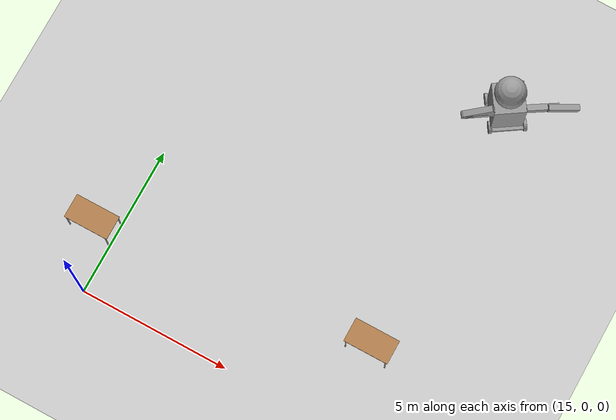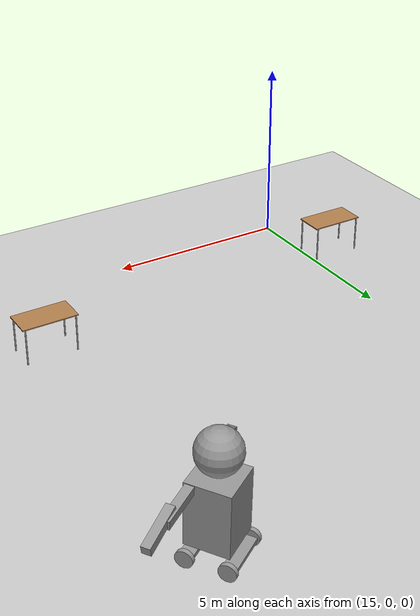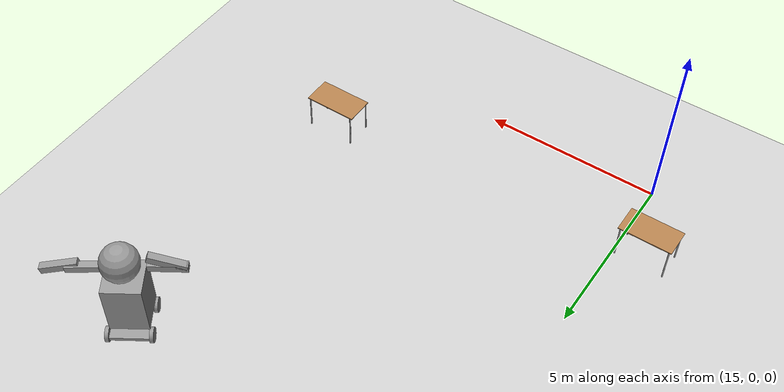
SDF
<sdf version="1.7">
 <world name="default">
  <model name="ground_plane">
   <static>1</static>
   <link name="link">
    <collision name="collision">
     <geometry><plane><normal>0 0 1</normal><size>100 100</size></plane></geometry>
     <surface>
      <contact><collide_bitmask>65535</collide_bitmask></contact>
      <friction><ode><mu>100</mu><mu2>50</mu2></ode></friction>
     </surface>
    </collision>
    <visual name="visual">
     <cast_shadows>0</cast_shadows>
     <geometry><plane><normal>0 0 1</normal><size>100 100</size></plane></geometry>
     <material>
      <script><uri>file://media/materials/scripts/gazebo.material</uri><name>Gazebo/Grey</name></script>
     </material>
    </visual>
   </link>
  </model>
  <model name="humanoid_robot_1">
   <link name="link_1">
    <inertial>
     <mass>2.10479</mass>
     <inertia>
      <ixx>0.952439</ixx>
      <ixy>0</ixy>
      <ixz>0</ixz>
      <iyy>0.952439</iyy>
      <iyz>0</iyz>
      <izz>0.350798</izz>
     </inertia>
    </inertial>
    <pose>-0.448722 -0.08924 -0.419518 0 -0 0</pose>
    <visual name="visual">
     <pose>0 0 0.2 0 -0 0</pose>
     <geometry><box><size>1 1 1.5</size></box></geometry>
     <material>
      <lighting>1</lighting>
      <script><uri>file://media/materials/scripts/gazebo.material</uri><name>Gazebo/Grey</name></script>
      <shader type="pixel"><normal_map>__default__</normal_map></shader>
      <ambient>0.3 0.3 0.3 1</ambient>
      <diffuse>0.7 0.7 0.7 1</diffuse>
      <specular>0.01 0.01 0.01 1</specular>
      <emissive>0 0 0 1</emissive>
     </material>
    </visual>
    <collision name="collision">
     <pose>0 0 0.2 0 -0 0</pose>
     <geometry><box><size>1 1 1.5</size></box></geometry>
     <surface>
      <friction>
       <ode><mu>1</mu><mu2>1</mu2><fdir1>0 0 0</fdir1><slip1>0</slip1><slip2>0</slip2></ode>
       <torsional>
        <coefficient>1</coefficient>
        <patch_radius>0</patch_radius>
        <surface_radius>0</surface_radius>
        <use_patch_radius>1</use_patch_radius>
        <ode><slip>0</slip></ode>
       </torsional>
      </friction>
      <bounce><restitution_coefficient>0</restitution_coefficient><threshold>1e+06</threshold></bounce>
      <contact>
       <collide_without_contact>0</collide_without_contact>
       <collide_without_contact_bitmask>1</collide_without_contact_bitmask>
       <collide_bitmask>1</collide_bitmask>
       <ode>
        <soft_cfm>0</soft_cfm>
        <soft_erp>0.2</soft_erp>
        <kp>1e+13</kp>
        <kd>1</kd>
        <max_vel>0.01</max_vel>
        <min_depth>0</min_depth>
       </ode>
       <bullet>
        <split_impulse>1</split_impulse>
        <split_impulse_penetration_threshold>-0.01</split_impulse_penetration_threshold>
        <soft_cfm>0</soft_cfm>
        <soft_erp>0.2</soft_erp>
        <kp>1e+13</kp>
        <kd>1</kd>
       </bullet>
      </contact>
     </surface>
    </collision>
   </link>
   <link name="link_4">
    <inertial>
     <mass>1</mass>
     <inertia><ixx>0.1</ixx><ixy>0</ixy><ixz>0</ixz><iyy>0.1</iyy><iyz>0</iyz><izz>0.1</izz></inertia>
    </inertial>
    <pose>-0.448722 -0.08924 1.08048 0 -0 0</pose>
    <visual name="visual">
     <geometry><sphere><radius>0.5</radius></sphere></geometry>
     <material>
      <lighting>1</lighting>
      <script><uri>file://media/materials/scripts/gazebo.material</uri><name>Gazebo/Grey</name></script>
      <shader type="pixel"><normal_map>__default__</normal_map></shader>
      <ambient>0.3 0.3 0.3 1</ambient>
      <diffuse>0.7 0.7 0.7 1</diffuse>
      <specular>0.01 0.01 0.01 1</specular>
      <emissive>0 0 0 1</emissive>
     </material>
    </visual>
    <collision name="collision">
     <geometry><sphere><radius>0.5</radius></sphere></geometry>
     <surface>
      <friction>
       <ode><mu>1</mu><mu2>1</mu2><fdir1>0 0 0</fdir1><slip1>0</slip1><slip2>0</slip2></ode>
       <torsional>
        <coefficient>1</coefficient>
        <patch_radius>0</patch_radius>
        <surface_radius>0</surface_radius>
        <use_patch_radius>1</use_patch_radius>
        <ode><slip>0</slip></ode>
       </torsional>
      </friction>
      <bounce><restitution_coefficient>0</restitution_coefficient><threshold>1e+06</threshold></bounce>
      <contact>
       <collide_without_contact>0</collide_without_contact>
       <collide_without_contact_bitmask>1</collide_without_contact_bitmask>
       <collide_bitmask>1</collide_bitmask>
       <ode>
        <soft_cfm>0</soft_cfm>
        <soft_erp>0.2</soft_erp>
        <kp>1e+13</kp>
        <kd>1</kd>
        <max_vel>0.01</max_vel>
        <min_depth>0</min_depth>
       </ode>
       <bullet>
        <split_impulse>1</split_impulse>
        <split_impulse_penetration_threshold>-0.01</split_impulse_penetration_threshold>
        <soft_cfm>0</soft_cfm>
        <soft_erp>0.2</soft_erp>
        <kp>1e+13</kp>
        <kd>1</kd>
       </bullet>
      </contact>
     </surface>
    </collision>
   </link>
   <link name="link_5">
    <inertial>
     <mass>1</mass>
     <inertia>
      <ixx>0.166667</ixx>
      <ixy>0</ixy>
      <ixz>0</ixz>
      <iyy>0.166667</iyy>
      <iyz>0</iyz>
      <izz>0.166667</izz>
     </inertia>
    </inertial>
    <pose>-0.088722 0.91076 0.390482 -0.06 -0.04 0</pose>
    <visual name="visual">
     <geometry><box><size>0.2 1 0.2</size></box></geometry>
     <material>
      <lighting>1</lighting>
      <script><uri>file://media/materials/scripts/gazebo.material</uri><name>Gazebo/Grey</name></script>
      <shader type="pixel"><normal_map>__default__</normal_map></shader>
      <ambient>0.3 0.3 0.3 1</ambient>
      <diffuse>0.7 0.7 0.7 1</diffuse>
      <specular>0.01 0.01 0.01 1</specular>
      <emissive>0 0 0 1</emissive>
     </material>
    </visual>
    <collision name="collision">
     <geometry><box><size>0.2 1 0.2</size></box></geometry>
     <surface>
      <friction>
       <ode><mu>1</mu><mu2>1</mu2><fdir1>0 0 0</fdir1><slip1>0</slip1><slip2>0</slip2></ode>
       <torsional>
        <coefficient>1</coefficient>
        <patch_radius>0</patch_radius>
        <surface_radius>0</surface_radius>
        <use_patch_radius>1</use_patch_radius>
        <ode><slip>0</slip></ode>
       </torsional>
      </friction>
      <bounce><restitution_coefficient>0</restitution_coefficient><threshold>1e+06</threshold></bounce>
      <contact>
       <collide_without_contact>0</collide_without_contact>
       <collide_without_contact_bitmask>1</collide_without_contact_bitmask>
       <collide_bitmask>1</collide_bitmask>
       <ode>
        <soft_cfm>0</soft_cfm>
        <soft_erp>0.2</soft_erp>
        <kp>1e+13</kp>
        <kd>1</kd>
        <max_vel>0.01</max_vel>
        <min_depth>0</min_depth>
       </ode>
       <bullet>
        <split_impulse>1</split_impulse>
        <split_impulse_penetration_threshold>-0.01</split_impulse_penetration_threshold>
        <soft_cfm>0</soft_cfm>
        <soft_erp>0.2</soft_erp>
        <kp>1e+13</kp>
        <kd>1</kd>
       </bullet>
      </contact>
     </surface>
    </collision>
   </link>
   <link name="link_5_clone">
    <inertial>
     <mass>1</mass>
     <inertia>
      <ixx>0.166667</ixx>
      <ixy>0</ixy>
      <ixz>0</ixz>
      <iyy>0.166667</iyy>
      <iyz>0</iyz>
      <izz>0.166667</izz>
     </inertia>
    </inertial>
    <pose>-0.048722 -1.08924 0.430482 0 -0 0</pose>
    <visual name="visual">
     <geometry><box><size>0.2 1 0.2</size></box></geometry>
     <material>
      <lighting>1</lighting>
      <script><uri>file://media/materials/scripts/gazebo.material</uri><name>Gazebo/Grey</name></script>
      <shader type="pixel"><normal_map>__default__</normal_map></shader>
      <ambient>0.3 0.3 0.3 1</ambient>
      <diffuse>0.7 0.7 0.7 1</diffuse>
      <specular>0.01 0.01 0.01 1</specular>
      <emissive>0 0 0 1</emissive>
     </material>
    </visual>
    <collision name="collision">
     <geometry><box><size>0.2 1 0.2</size></box></geometry>
     <surface>
      <friction>
       <ode><mu>1</mu><mu2>1</mu2><fdir1>0 0 0</fdir1><slip1>0</slip1><slip2>0</slip2></ode>
       <torsional>
        <coefficient>1</coefficient>
        <patch_radius>0</patch_radius>
        <surface_radius>0</surface_radius>
        <use_patch_radius>1</use_patch_radius>
        <ode><slip>0</slip></ode>
       </torsional>
      </friction>
      <bounce><restitution_coefficient>0</restitution_coefficient><threshold>1e+06</threshold></bounce>
      <contact>
       <collide_without_contact>0</collide_without_contact>
       <collide_without_contact_bitmask>1</collide_without_contact_bitmask>
       <collide_bitmask>1</collide_bitmask>
       <ode>
        <soft_cfm>0</soft_cfm>
        <soft_erp>0.2</soft_erp>
        <kp>1e+13</kp>
        <kd>1</kd>
        <max_vel>0.01</max_vel>
        <min_depth>0</min_depth>
       </ode>
       <bullet>
        <split_impulse>1</split_impulse>
        <split_impulse_penetration_threshold>-0.01</split_impulse_penetration_threshold>
        <soft_cfm>0</soft_cfm>
        <soft_erp>0.2</soft_erp>
        <kp>1e+13</kp>
        <kd>1</kd>
       </bullet>
      </contact>
     </surface>
    </collision>
   </link>
   <link name="link_5_clone_clone">
    <inertial>
     <mass>1</mass>
     <inertia>
      <ixx>0.166667</ixx>
      <ixy>0</ixy>
      <ixz>0</ixz>
      <iyy>0.166667</iyy>
      <iyz>0</iyz>
      <izz>0.166667</izz>
     </inertia>
    </inertial>
    <pose>-0.048722 -1.08689 0.604392 0.369688 -0 0</pose>
    <visual name="visual">
     <geometry><box><size>0.2 1 0.2</size></box></geometry>
     <material>
      <lighting>1</lighting>
      <script><uri>file://media/materials/scripts/gazebo.material</uri><name>Gazebo/Grey</name></script>
      <shader type="pixel"><normal_map>__default__</normal_map></shader>
      <ambient>0.3 0.3 0.3 1</ambient>
      <diffuse>0.7 0.7 0.7 1</diffuse>
      <specular>0.01 0.01 0.01 1</specular>
      <emissive>0 0 0 1</emissive>
     </material>
    </visual>
    <collision name="collision">
     <geometry><box><size>0.2 1 0.2</size></box></geometry>
     <surface>
      <friction>
       <ode><mu>1</mu><mu2>1</mu2><fdir1>0 0 0</fdir1><slip1>0</slip1><slip2>0</slip2></ode>
       <torsional>
        <coefficient>1</coefficient>
        <patch_radius>0</patch_radius>
        <surface_radius>0</surface_radius>
        <use_patch_radius>1</use_patch_radius>
        <ode><slip>0</slip></ode>
       </torsional>
      </friction>
      <bounce><restitution_coefficient>0</restitution_coefficient><threshold>1e+06</threshold></bounce>
      <contact>
       <collide_without_contact>0</collide_without_contact>
       <collide_without_contact_bitmask>1</collide_without_contact_bitmask>
       <collide_bitmask>1</collide_bitmask>
       <ode>
        <soft_cfm>0</soft_cfm>
        <soft_erp>0.2</soft_erp>
        <kp>1e+13</kp>
        <kd>1</kd>
        <max_vel>0.01</max_vel>
        <min_depth>0</min_depth>
       </ode>
       <bullet>
        <split_impulse>1</split_impulse>
        <split_impulse_penetration_threshold>-0.01</split_impulse_penetration_threshold>
        <soft_cfm>0</soft_cfm>
        <soft_erp>0.2</soft_erp>
        <kp>1e+13</kp>
        <kd>1</kd>
       </bullet>
      </contact>
     </surface>
    </collision>
   </link>
   <link name="link_5_clone_clone_0">
    <inertial>
     <mass>1</mass>
     <inertia>
      <ixx>0.166667</ixx>
      <ixy>0</ixy>
      <ixz>0</ixz>
      <iyy>0.166667</iyy>
      <iyz>0</iyz>
      <izz>0.166667</izz>
     </inertia>
    </inertial>
    <pose>-0.043643 1.55059 0.350025 -0.239275 0 0</pose>
    <visual name="visual">
     <geometry><box><size>0.2 1 0.2</size></box></geometry>
     <material>
      <lighting>1</lighting>
      <script><uri>file://media/materials/scripts/gazebo.material</uri><name>Gazebo/Grey</name></script>
      <shader type="pixel"><normal_map>__default__</normal_map></shader>
      <ambient>0.3 0.3 0.3 1</ambient>
      <diffuse>0.7 0.7 0.7 1</diffuse>
      <specular>0.01 0.01 0.01 1</specular>
      <emissive>0 0 0 1</emissive>
     </material>
    </visual>
    <collision name="collision">
     <geometry><box><size>0.2 1 0.2</size></box></geometry>
     <surface>
      <friction>
       <ode><mu>1</mu><mu2>1</mu2><fdir1>0 0 0</fdir1><slip1>0</slip1><slip2>0</slip2></ode>
       <torsional>
        <coefficient>1</coefficient>
        <patch_radius>0</patch_radius>
        <surface_radius>0</surface_radius>
        <use_patch_radius>1</use_patch_radius>
        <ode><slip>0</slip></ode>
       </torsional>
      </friction>
      <bounce><restitution_coefficient>0</restitution_coefficient><threshold>1e+06</threshold></bounce>
      <contact>
       <collide_without_contact>0</collide_without_contact>
       <collide_without_contact_bitmask>1</collide_without_contact_bitmask>
       <collide_bitmask>1</collide_bitmask>
       <ode>
        <soft_cfm>0</soft_cfm>
        <soft_erp>0.2</soft_erp>
        <kp>1e+13</kp>
        <kd>1</kd>
        <max_vel>0.01</max_vel>
        <min_depth>0</min_depth>
       </ode>
       <bullet>
        <split_impulse>1</split_impulse>
        <split_impulse_penetration_threshold>-0.01</split_impulse_penetration_threshold>
        <soft_cfm>0</soft_cfm>
        <soft_erp>0.2</soft_erp>
        <kp>1e+13</kp>
        <kd>1</kd>
       </bullet>
      </contact>
     </surface>
    </collision>
   </link>
   <model name="robot">
    <link name="link_1">
     <inertial>
      <mass>1</mass>
      <inertia>
       <ixx>0.166667</ixx>
       <ixy>0</ixy>
       <ixz>0</ixz>
       <iyy>0.166667</iyy>
       <iyz>0</iyz>
       <izz>0.166667</izz>
      </inertia>
     </inertial>
     <visual name="visual">
      <geometry><box><size>0.3 1 0.1</size></box></geometry>
      <material>
       <lighting>1</lighting>
       <script><uri>file://media/materials/scripts/gazebo.material</uri><name>Gazebo/Grey</name></script>
       <shader type="pixel"><normal_map>__default__</normal_map></shader>
       <ambient>0.3 0.3 0.3 1</ambient>
       <diffuse>0.7 0.7 0.7 1</diffuse>
       <specular>0.01 0.01 0.01 1</specular>
       <emissive>0 0 0 1</emissive>
      </material>
     </visual>
     <collision name="collision">
      <geometry><box><size>0.3 1 0.1</size></box></geometry>
      <surface>
       <friction>
        <ode><mu>1</mu><mu2>1</mu2><fdir1>0 0 0</fdir1><slip1>0</slip1><slip2>0</slip2></ode>
        <torsional>
         <coefficient>1</coefficient>
         <patch_radius>0</patch_radius>
         <surface_radius>0</surface_radius>
         <use_patch_radius>1</use_patch_radius>
         <ode><slip>0</slip></ode>
        </torsional>
       </friction>
       <bounce><restitution_coefficient>0</restitution_coefficient><threshold>1e+06</threshold></bounce>
       <contact>
        <collide_without_contact>0</collide_without_contact>
        <collide_without_contact_bitmask>1</collide_without_contact_bitmask>
        <collide_bitmask>1</collide_bitmask>
        <ode>
         <soft_cfm>0</soft_cfm>
         <soft_erp>0.2</soft_erp>
         <kp>1e+13</kp>
         <kd>1</kd>
         <max_vel>0.01</max_vel>
         <min_depth>0</min_depth>
        </ode>
        <bullet>
         <split_impulse>1</split_impulse>
         <split_impulse_penetration_threshold>-0.01</split_impulse_penetration_threshold>
         <soft_cfm>0</soft_cfm>
         <soft_erp>0.2</soft_erp>
         <kp>1e+13</kp>
         <kd>1</kd>
        </bullet>
       </contact>
      </surface>
     </collision>
    </link>
    <link name="link_3_clone">
     <inertial>
      <mass>1</mass>
      <inertia><ixx>0.145833</ixx><ixy>0</ixy><ixz>0</ixz><iyy>0.145833</iyy><iyz>0</iyz><izz>0.125</izz></inertia>
     </inertial>
     <pose>0 -0.550019 0 1.5707 -0 0</pose>
     <visual name="visual">
      <geometry><cylinder><radius>0.2</radius><length>0.1</length></cylinder></geometry>
      <material>
       <lighting>1</lighting>
       <script><uri>file://media/materials/scripts/gazebo.material</uri><name>Gazebo/Grey</name></script>
       <shader type="pixel"><normal_map>__default__</normal_map></shader>
       <ambient>0.3 0.3 0.3 1</ambient>
       <diffuse>0.7 0.7 0.7 1</diffuse>
       <specular>0.01 0.01 0.01 1</specular>
       <emissive>0 0 0 1</emissive>
      </material>
     </visual>
     <collision name="collision">
      <geometry><cylinder><radius>0.2</radius><length>0.1</length></cylinder></geometry>
      <surface>
       <friction>
        <ode><mu>1</mu><mu2>1</mu2><fdir1>0 0 0</fdir1><slip1>0</slip1><slip2>0</slip2></ode>
        <torsional>
         <coefficient>1</coefficient>
         <patch_radius>0</patch_radius>
         <surface_radius>0</surface_radius>
         <use_patch_radius>1</use_patch_radius>
         <ode><slip>0</slip></ode>
        </torsional>
       </friction>
       <bounce><restitution_coefficient>0</restitution_coefficient><threshold>1e+06</threshold></bounce>
       <contact>
        <collide_without_contact>0</collide_without_contact>
        <collide_without_contact_bitmask>1</collide_without_contact_bitmask>
        <collide_bitmask>1</collide_bitmask>
        <ode>
         <soft_cfm>0</soft_cfm>
         <soft_erp>0.2</soft_erp>
         <kp>1e+13</kp>
         <kd>1</kd>
         <max_vel>0.01</max_vel>
         <min_depth>0</min_depth>
        </ode>
        <bullet>
         <split_impulse>1</split_impulse>
         <split_impulse_penetration_threshold>-0.01</split_impulse_penetration_threshold>
         <soft_cfm>0</soft_cfm>
         <soft_erp>0.2</soft_erp>
         <kp>1e+13</kp>
         <kd>1</kd>
        </bullet>
       </contact>
      </surface>
     </collision>
    </link>
    <link name="link_3_clone_clone">
     <inertial>
      <mass>1</mass>
      <inertia><ixx>0.145833</ixx><ixy>0</ixy><ixz>0</ixz><iyy>0.145833</iyy><iyz>0</iyz><izz>0.125</izz></inertia>
     </inertial>
     <pose>0 0.550019 0 1.5707 -0 0</pose>
     <visual name="visual">
      <geometry><cylinder><radius>0.2</radius><length>0.1</length></cylinder></geometry>
      <material>
       <lighting>1</lighting>
       <script><uri>file://media/materials/scripts/gazebo.material</uri><name>Gazebo/Grey</name></script>
       <shader type="pixel"><normal_map>__default__</normal_map></shader>
       <ambient>0.3 0.3 0.3 1</ambient>
       <diffuse>0.7 0.7 0.7 1</diffuse>
       <specular>0.01 0.01 0.01 1</specular>
       <emissive>0 0 0 1</emissive>
      </material>
     </visual>
     <collision name="collision">
      <geometry><cylinder><radius>0.2</radius><length>0.1</length></cylinder></geometry>
      <surface>
       <friction>
        <ode><mu>1</mu><mu2>1</mu2><fdir1>0 0 0</fdir1><slip1>0</slip1><slip2>0</slip2></ode>
        <torsional>
         <coefficient>1</coefficient>
         <patch_radius>0</patch_radius>
         <surface_radius>0</surface_radius>
         <use_patch_radius>1</use_patch_radius>
         <ode><slip>0</slip></ode>
        </torsional>
       </friction>
       <bounce><restitution_coefficient>0</restitution_coefficient><threshold>1e+06</threshold></bounce>
       <contact>
        <collide_without_contact>0</collide_without_contact>
        <collide_without_contact_bitmask>1</collide_without_contact_bitmask>
        <collide_bitmask>1</collide_bitmask>
        <ode>
         <soft_cfm>0</soft_cfm>
         <soft_erp>0.2</soft_erp>
         <kp>1e+13</kp>
         <kd>1</kd>
         <max_vel>0.01</max_vel>
         <min_depth>0</min_depth>
        </ode>
        <bullet>
         <split_impulse>1</split_impulse>
         <split_impulse_penetration_threshold>-0.01</split_impulse_penetration_threshold>
         <soft_cfm>0</soft_cfm>
         <soft_erp>0.2</soft_erp>
         <kp>1e+13</kp>
         <kd>1</kd>
        </bullet>
       </contact>
      </surface>
     </collision>
    </link>
    <joint name="link_1_JOINT_1" type="revolute">
     <parent>link_1</parent>
     <child>link_3_clone</child>
     <axis>
      <xyz>0 0 1</xyz>
      <limit>
       <lower>-1.79769e+308</lower>
       <upper>1.79769e+308</upper>
       <effort>-1</effort>
       <velocity>-1</velocity>
      </limit>
      <dynamics>
       <spring_reference>0</spring_reference>
       <spring_stiffness>0</spring_stiffness>
       <damping>0</damping>
      </dynamics>
     </axis>
     <physics>
      <ode><limit><cfm>0</cfm><erp>0.2</erp></limit><suspension><cfm>0</cfm><erp>0.2</erp></suspension></ode>
     </physics>
    </joint>
    <joint name="link_1_JOINT_3" type="revolute">
     <parent>link_1</parent>
     <child>link_3_clone_clone</child>
     <axis>
      <xyz>0 0 1</xyz>
      <limit>
       <lower>-1.79769e+308</lower>
       <upper>1.79769e+308</upper>
       <effort>-1</effort>
       <velocity>-1</velocity>
      </limit>
      <dynamics>
       <spring_reference>0</spring_reference>
       <spring_stiffness>0</spring_stiffness>
       <damping>0</damping>
      </dynamics>
     </axis>
     <physics>
      <ode><limit><cfm>0</cfm><erp>0.2</erp></limit><suspension><cfm>0</cfm><erp>0.2</erp></suspension></ode>
     </physics>
    </joint>
    <static>0</static>
    <pose>-0.041176 -0.042224 -1.22566 0 -0 0</pose>
   </model>
   <model name="robot_0">
    <link name="link_1">
     <inertial>
      <mass>1</mass>
      <inertia>
       <ixx>0.166667</ixx>
       <ixy>0</ixy>
       <ixz>0</ixz>
       <iyy>0.166667</iyy>
       <iyz>0</iyz>
       <izz>0.166667</izz>
      </inertia>
     </inertial>
     <visual name="visual">
      <geometry><box><size>0.3 1 0.1</size></box></geometry>
      <material>
       <lighting>1</lighting>
       <script><uri>file://media/materials/scripts/gazebo.material</uri><name>Gazebo/Grey</name></script>
       <shader type="pixel"><normal_map>__default__</normal_map></shader>
       <ambient>0.3 0.3 0.3 1</ambient>
       <diffuse>0.7 0.7 0.7 1</diffuse>
       <specular>0.01 0.01 0.01 1</specular>
       <emissive>0 0 0 1</emissive>
      </material>
     </visual>
     <collision name="collision">
      <geometry><box><size>0.3 1 0.1</size></box></geometry>
      <surface>
       <friction>
        <ode><mu>1</mu><mu2>1</mu2><fdir1>0 0 0</fdir1><slip1>0</slip1><slip2>0</slip2></ode>
        <torsional>
         <coefficient>1</coefficient>
         <patch_radius>0</patch_radius>
         <surface_radius>0</surface_radius>
         <use_patch_radius>1</use_patch_radius>
         <ode><slip>0</slip></ode>
        </torsional>
       </friction>
       <bounce><restitution_coefficient>0</restitution_coefficient><threshold>1e+06</threshold></bounce>
       <contact>
        <collide_without_contact>0</collide_without_contact>
        <collide_without_contact_bitmask>1</collide_without_contact_bitmask>
        <collide_bitmask>1</collide_bitmask>
        <ode>
         <soft_cfm>0</soft_cfm>
         <soft_erp>0.2</soft_erp>
         <kp>1e+13</kp>
         <kd>1</kd>
         <max_vel>0.01</max_vel>
         <min_depth>0</min_depth>
        </ode>
        <bullet>
         <split_impulse>1</split_impulse>
         <split_impulse_penetration_threshold>-0.01</split_impulse_penetration_threshold>
         <soft_cfm>0</soft_cfm>
         <soft_erp>0.2</soft_erp>
         <kp>1e+13</kp>
         <kd>1</kd>
        </bullet>
       </contact>
      </surface>
     </collision>
    </link>
    <link name="link_3_clone">
     <inertial>
      <mass>1</mass>
      <inertia><ixx>0.145833</ixx><ixy>0</ixy><ixz>0</ixz><iyy>0.145833</iyy><iyz>0</iyz><izz>0.125</izz></inertia>
     </inertial>
     <pose>0 -0.550019 0 1.5707 -0 0</pose>
     <visual name="visual">
      <geometry><cylinder><radius>0.2</radius><length>0.1</length></cylinder></geometry>
      <material>
       <lighting>1</lighting>
       <script><uri>file://media/materials/scripts/gazebo.material</uri><name>Gazebo/Grey</name></script>
       <shader type="pixel"><normal_map>__default__</normal_map></shader>
       <ambient>0.3 0.3 0.3 1</ambient>
       <diffuse>0.7 0.7 0.7 1</diffuse>
       <specular>0.01 0.01 0.01 1</specular>
       <emissive>0 0 0 1</emissive>
      </material>
     </visual>
     <collision name="collision">
      <geometry><cylinder><radius>0.2</radius><length>0.1</length></cylinder></geometry>
      <surface>
       <friction>
        <ode><mu>1</mu><mu2>1</mu2><fdir1>0 0 0</fdir1><slip1>0</slip1><slip2>0</slip2></ode>
        <torsional>
         <coefficient>1</coefficient>
         <patch_radius>0</patch_radius>
         <surface_radius>0</surface_radius>
         <use_patch_radius>1</use_patch_radius>
         <ode><slip>0</slip></ode>
        </torsional>
       </friction>
       <bounce><restitution_coefficient>0</restitution_coefficient><threshold>1e+06</threshold></bounce>
       <contact>
        <collide_without_contact>0</collide_without_contact>
        <collide_without_contact_bitmask>1</collide_without_contact_bitmask>
        <collide_bitmask>1</collide_bitmask>
        <ode>
         <soft_cfm>0</soft_cfm>
         <soft_erp>0.2</soft_erp>
         <kp>1e+13</kp>
         <kd>1</kd>
         <max_vel>0.01</max_vel>
         <min_depth>0</min_depth>
        </ode>
        <bullet>
         <split_impulse>1</split_impulse>
         <split_impulse_penetration_threshold>-0.01</split_impulse_penetration_threshold>
         <soft_cfm>0</soft_cfm>
         <soft_erp>0.2</soft_erp>
         <kp>1e+13</kp>
         <kd>1</kd>
        </bullet>
       </contact>
      </surface>
     </collision>
    </link>
    <link name="link_3_clone_clone">
     <inertial>
      <mass>1</mass>
      <inertia><ixx>0.145833</ixx><ixy>0</ixy><ixz>0</ixz><iyy>0.145833</iyy><iyz>0</iyz><izz>0.125</izz></inertia>
     </inertial>
     <pose>0 0.550019 0 1.5707 -0 0</pose>
     <visual name="visual">
      <geometry><cylinder><radius>0.2</radius><length>0.1</length></cylinder></geometry>
      <material>
       <lighting>1</lighting>
       <script><uri>file://media/materials/scripts/gazebo.material</uri><name>Gazebo/Grey</name></script>
       <shader type="pixel"><normal_map>__default__</normal_map></shader>
       <ambient>0.3 0.3 0.3 1</ambient>
       <diffuse>0.7 0.7 0.7 1</diffuse>
       <specular>0.01 0.01 0.01 1</specular>
       <emissive>0 0 0 1</emissive>
      </material>
     </visual>
     <collision name="collision">
      <geometry><cylinder><radius>0.2</radius><length>0.1</length></cylinder></geometry>
      <surface>
       <friction>
        <ode><mu>1</mu><mu2>1</mu2><fdir1>0 0 0</fdir1><slip1>0</slip1><slip2>0</slip2></ode>
        <torsional>
         <coefficient>1</coefficient>
         <patch_radius>0</patch_radius>
         <surface_radius>0</surface_radius>
         <use_patch_radius>1</use_patch_radius>
         <ode><slip>0</slip></ode>
        </torsional>
       </friction>
       <bounce><restitution_coefficient>0</restitution_coefficient><threshold>1e+06</threshold></bounce>
       <contact>
        <collide_without_contact>0</collide_without_contact>
        <collide_without_contact_bitmask>1</collide_without_contact_bitmask>
        <collide_bitmask>1</collide_bitmask>
        <ode>
         <soft_cfm>0</soft_cfm>
         <soft_erp>0.2</soft_erp>
         <kp>1e+13</kp>
         <kd>1</kd>
         <max_vel>0.01</max_vel>
         <min_depth>0</min_depth>
        </ode>
        <bullet>
         <split_impulse>1</split_impulse>
         <split_impulse_penetration_threshold>-0.01</split_impulse_penetration_threshold>
         <soft_cfm>0</soft_cfm>
         <soft_erp>0.2</soft_erp>
         <kp>1e+13</kp>
         <kd>1</kd>
        </bullet>
       </contact>
      </surface>
     </collision>
    </link>
    <joint name="link_1_JOINT_1" type="revolute">
     <parent>link_1</parent>
     <child>link_3_clone</child>
     <axis>
      <xyz>0 0 1</xyz>
      <limit>
       <lower>-1.79769e+308</lower>
       <upper>1.79769e+308</upper>
       <effort>-1</effort>
       <velocity>-1</velocity>
      </limit>
      <dynamics>
       <spring_reference>0</spring_reference>
       <spring_stiffness>0</spring_stiffness>
       <damping>0</damping>
      </dynamics>
     </axis>
     <physics>
      <ode><limit><cfm>0</cfm><erp>0.2</erp></limit><suspension><cfm>0</cfm><erp>0.2</erp></suspension></ode>
     </physics>
    </joint>
    <joint name="link_1_JOINT_3" type="revolute">
     <parent>link_1</parent>
     <child>link_3_clone_clone</child>
     <axis>
      <xyz>0 0 1</xyz>
      <limit>
       <lower>-1.79769e+308</lower>
       <upper>1.79769e+308</upper>
       <effort>-1</effort>
       <velocity>-1</velocity>
      </limit>
      <dynamics>
       <spring_reference>0</spring_reference>
       <spring_stiffness>0</spring_stiffness>
       <damping>0</damping>
      </dynamics>
     </axis>
     <physics>
      <ode><limit><cfm>0</cfm><erp>0.2</erp></limit><suspension><cfm>0</cfm><erp>0.2</erp></suspension></ode>
     </physics>
    </joint>
    <static>0</static>
    <pose>-0.953654 -0.064519 -1.21068 0 -0 0</pose>
   </model>
   <joint name="link_1_JOINT_0" type="ball">
    <parent>link_1</parent>
    <child>link_4</child>
    <physics>
     <ode><limit><cfm>0</cfm><erp>0.2</erp></limit><suspension><cfm>0</cfm><erp>0.2</erp></suspension></ode>
    </physics>
   </joint>
   <joint name="link_1_JOINT_3" type="ball">
    <parent>link_1</parent>
    <child>link_5</child>
    <physics>
     <ode><limit><cfm>0</cfm><erp>0.2</erp></limit><suspension><cfm>0</cfm><erp>0.2</erp></suspension></ode>
    </physics>
   </joint>
   <joint name="link_1_JOINT_4" type="ball">
    <parent>link_1</parent>
    <child>link_5_clone</child>
    <physics>
     <ode><limit><cfm>0</cfm><erp>0.2</erp></limit><suspension><cfm>0</cfm><erp>0.2</erp></suspension></ode>
    </physics>
   </joint>
   <joint name="link_5_JOINT_10" type="revolute">
    <parent>link_5</parent>
    <child>link_5_clone_clone_0</child>
    <axis>
     <xyz>1 0 0</xyz>
     <limit>
      <lower>-1.79769e+308</lower>
      <upper>1.79769e+308</upper>
      <effort>-1</effort>
      <velocity>-1</velocity>
     </limit>
     <dynamics>
      <spring_reference>0</spring_reference>
      <spring_stiffness>0</spring_stiffness>
      <damping>0</damping>
     </dynamics>
    </axis>
    <physics>
     <ode><limit><cfm>0</cfm><erp>0.2</erp></limit><suspension><cfm>0</cfm><erp>0.2</erp></suspension></ode>
    </physics>
   </joint>
   <joint name="link_5_clone_JOINT_5" type="revolute">
    <parent>link_5_clone</parent>
    <child>link_5_clone_clone</child>
    <pose>0 0 0 -0.01 0 0</pose>
    <axis>
     <xyz>1 0 0</xyz>
     <limit>
      <lower>-1.79769e+308</lower>
      <upper>1.79769e+308</upper>
      <effort>-1</effort>
      <velocity>-1</velocity>
     </limit>
     <dynamics>
      <spring_reference>0</spring_reference>
      <spring_stiffness>0</spring_stiffness>
      <damping>0</damping>
     </dynamics>
    </axis>
    <physics>
     <ode><limit><cfm>0</cfm><erp>0.2</erp></limit><suspension><cfm>0</cfm><erp>0.2</erp></suspension></ode>
    </physics>
   </joint>
   <joint name="link_1_JOINT_1" type="fixed">
    <parent>robot::link_1</parent>
    <child>link_1</child>
    <physics>
     <ode><limit><cfm>0</cfm><erp>0.2</erp></limit><suspension><cfm>0</cfm><erp>0.2</erp></suspension></ode>
    </physics>
   </joint>
   <joint name="link_1_JOINT_2" type="fixed">
    <parent>robot_0::link_1</parent>
    <child>link_1</child>
    <physics>
     <ode><limit><cfm>0</cfm><erp>0.2</erp></limit><suspension><cfm>0</cfm><erp>0.2</erp></suspension></ode>
    </physics>
   </joint>
   <static>0</static>
   <pose>24.0673 10.875 1.42617 4e-06 -0.01641 -0.994315</pose>
   <scale>200 200 200</scale>
  </model>
  <model name="table_0">
   <static>1</static>
   <link name="link">
    <collision name="surface">
     <pose>0 0 1 0 -0 0</pose>
     <geometry><box><size>1.5 0.8 0.03</size></box></geometry>
     <surface><friction><ode><mu>0.6</mu><mu2>0.6</mu2></ode></friction></surface>
    </collision>
    <visual name="visual1">
     <pose>0 0 1 0 -0 0</pose>
     <geometry><box><size>1.5 0.8 0.03</size></box></geometry>
     <material>
      <script><uri>file://media/materials/scripts/gazebo.material</uri><name>Gazebo/Wood</name></script>
     </material>
    </visual>
    <collision name="front_left_leg">
     <pose>0.68 0.38 0.5 0 -0 0</pose>
     <geometry><cylinder><radius>0.02</radius><length>1</length></cylinder></geometry>
    </collision>
    <visual name="front_left_leg">
     <pose>0.68 0.38 0.5 0 -0 0</pose>
     <geometry><cylinder><radius>0.02</radius><length>1</length></cylinder></geometry>
     <material>
      <script><uri>file://media/materials/scripts/gazebo.material</uri><name>Gazebo/Grey</name></script>
     </material>
    </visual>
    <collision name="front_right_leg">
     <pose>0.68 -0.38 0.5 0 -0 0</pose>
     <geometry><cylinder><radius>0.02</radius><length>1</length></cylinder></geometry>
    </collision>
    <visual name="front_right_leg">
     <pose>0.68 -0.38 0.5 0 -0 0</pose>
     <geometry><cylinder><radius>0.02</radius><length>1</length></cylinder></geometry>
     <material>
      <script><uri>file://media/materials/scripts/gazebo.material</uri><name>Gazebo/Grey</name></script>
     </material>
    </visual>
    <collision name="back_right_leg">
     <pose>-0.68 -0.38 0.5 0 -0 0</pose>
     <geometry><cylinder><radius>0.02</radius><length>1</length></cylinder></geometry>
    </collision>
    <visual name="back_right_leg">
     <pose>-0.68 -0.38 0.5 0 -0 0</pose>
     <geometry><cylinder><radius>0.02</radius><length>1</length></cylinder></geometry>
     <material>
      <script><uri>file://media/materials/scripts/gazebo.material</uri><name>Gazebo/Grey</name></script>
     </material>
    </visual>
    <collision name="back_left_leg">
     <pose>-0.68 0.38 0.5 0 -0 0</pose>
     <geometry><cylinder><radius>0.02</radius><length>1</length></cylinder></geometry>
    </collision>
    <visual name="back_left_leg">
     <pose>-0.68 0.38 0.5 0 -0 0</pose>
     <geometry><cylinder><radius>0.02</radius><length>1</length></cylinder></geometry>
     <material>
      <script><uri>file://media/materials/scripts/gazebo.material</uri><name>Gazebo/Grey</name></script>
     </material>
    </visual>
   </link>
   <pose>14.2431 2.02522 0 0 -0 0</pose>
  </model>
  <model name="table_1">
   <static>1</static>
   <link name="link">
    <collision name="surface">
     <pose>0 0 1 0 -0 0</pose>
     <geometry><box><size>1.5 0.8 0.03</size></box></geometry>
     <surface><friction><ode><mu>0.6</mu><mu2>0.6</mu2></ode></friction></surface>
    </collision>
    <visual name="visual1">
     <pose>0 0 1 0 -0 0</pose>
     <geometry><box><size>1.5 0.8 0.03</size></box></geometry>
     <material>
      <script><uri>file://media/materials/scripts/gazebo.material</uri><name>Gazebo/Wood</name></script>
     </material>
    </visual>
    <collision name="front_left_leg">
     <pose>0.68 0.38 0.5 0 -0 0</pose>
     <geometry><cylinder><radius>0.02</radius><length>1</length></cylinder></geometry>
    </collision>
    <visual name="front_left_leg">
     <pose>0.68 0.38 0.5 0 -0 0</pose>
     <geometry><cylinder><radius>0.02</radius><length>1</length></cylinder></geometry>
     <material>
      <script><uri>file://media/materials/scripts/gazebo.material</uri><name>Gazebo/Grey</name></script>
     </material>
    </visual>
    <collision name="front_right_leg">
     <pose>0.68 -0.38 0.5 0 -0 0</pose>
     <geometry><cylinder><radius>0.02</radius><length>1</length></cylinder></geometry>
    </collision>
    <visual name="front_right_leg">
     <pose>0.68 -0.38 0.5 0 -0 0</pose>
     <geometry><cylinder><radius>0.02</radius><length>1</length></cylinder></geometry>
     <material>
      <script><uri>file://media/materials/scripts/gazebo.material</uri><name>Gazebo/Grey</name></script>
     </material>
    </visual>
    <collision name="back_right_leg">
     <pose>-0.68 -0.38 0.5 0 -0 0</pose>
     <geometry><cylinder><radius>0.02</radius><length>1</length></cylinder></geometry>
    </collision>
    <visual name="back_right_leg">
     <pose>-0.68 -0.38 0.5 0 -0 0</pose>
     <geometry><cylinder><radius>0.02</radius><length>1</length></cylinder></geometry>
     <material>
      <script><uri>file://media/materials/scripts/gazebo.material</uri><name>Gazebo/Grey</name></script>
     </material>
    </visual>
    <collision name="back_left_leg">
     <pose>-0.68 0.38 0.5 0 -0 0</pose>
     <geometry><cylinder><radius>0.02</radius><length>1</length></cylinder></geometry>
    </collision>
    <visual name="back_left_leg">
     <pose>-0.68 0.38 0.5 0 -0 0</pose>
     <geometry><cylinder><radius>0.02</radius><length>1</length></cylinder></geometry>
     <material>
      <script><uri>file://media/materials/scripts/gazebo.material</uri><name>Gazebo/Grey</name></script>
     </material>
    </visual>
   </link>
   <pose>23.5714 2.7466 0 0 -0 0</pose>
  </model>
 </world>
</sdf>
